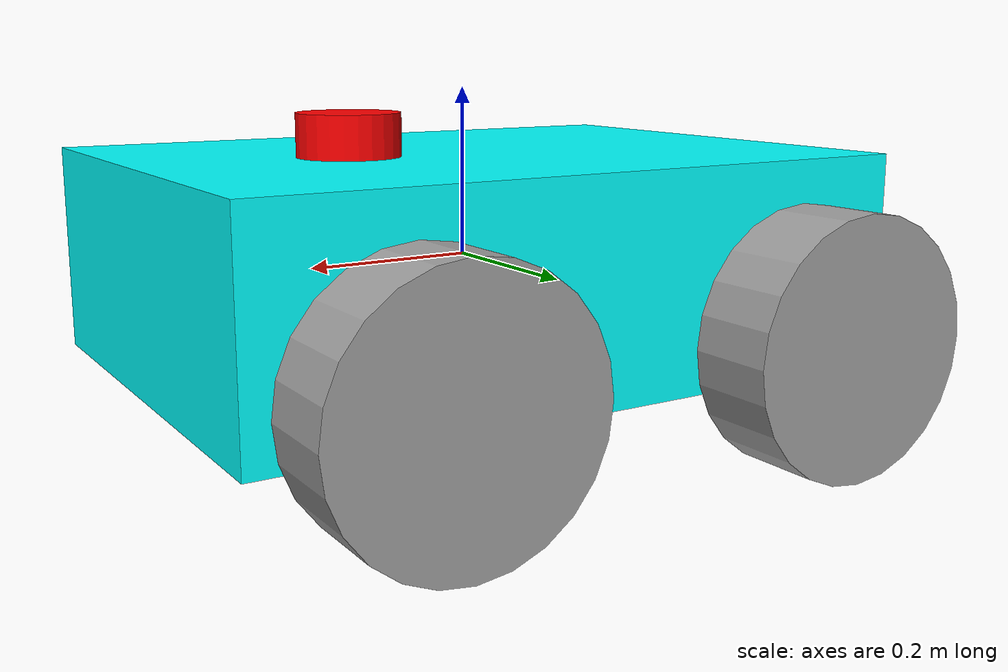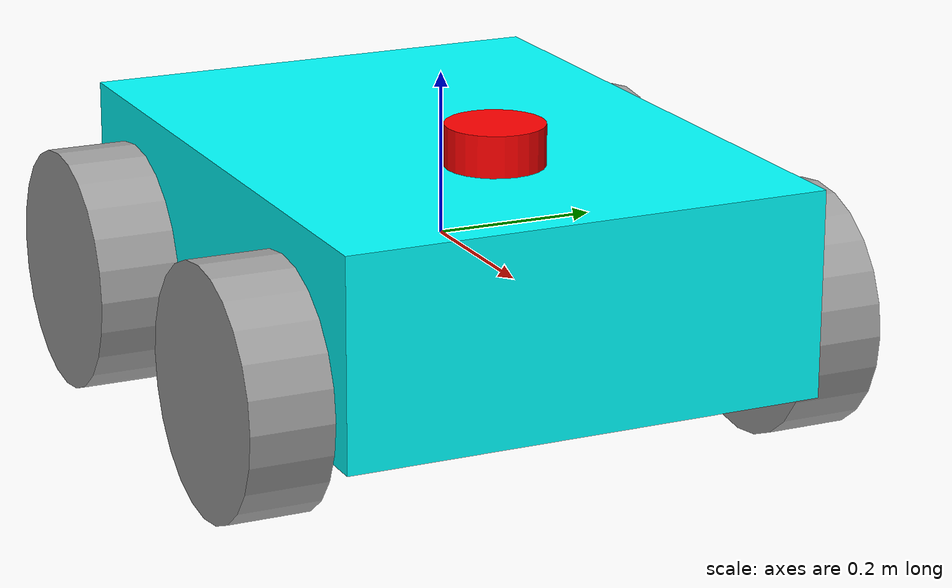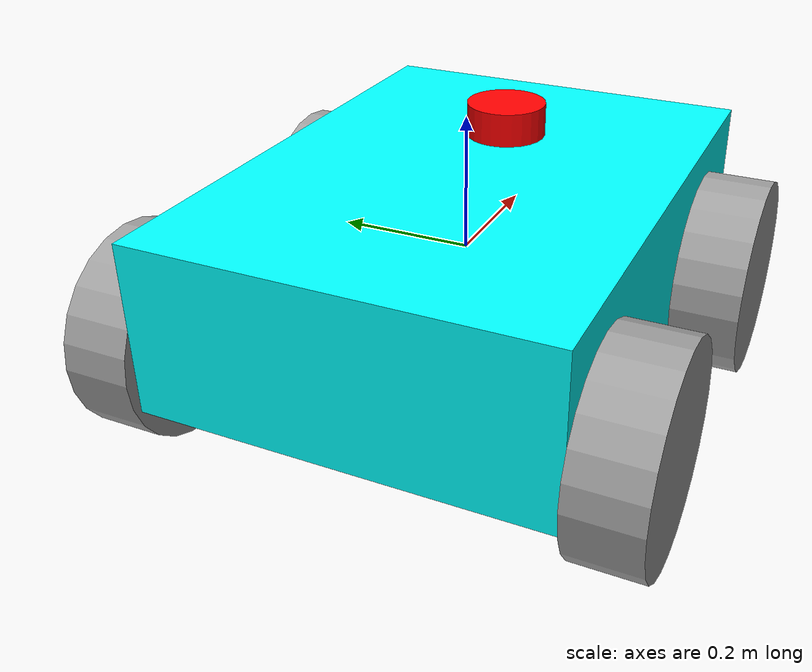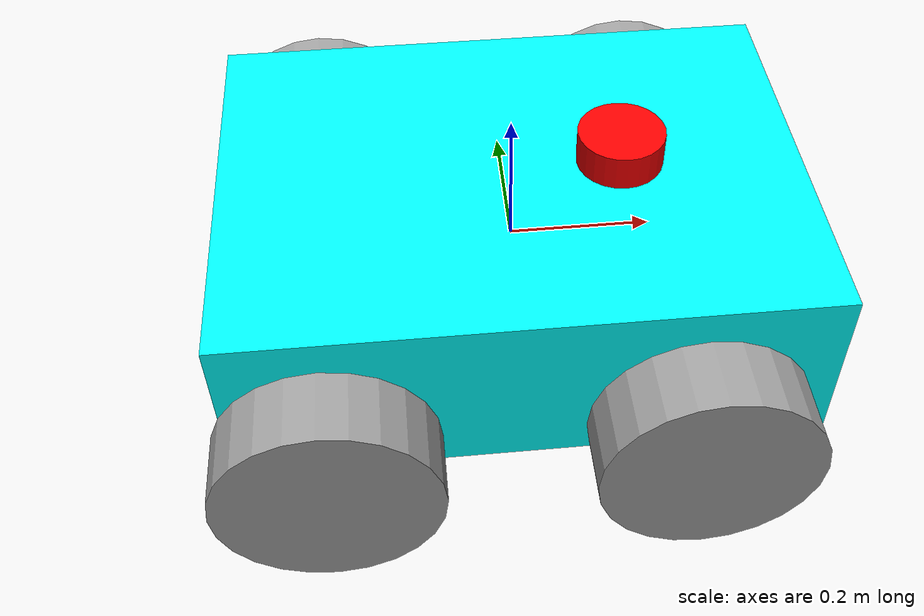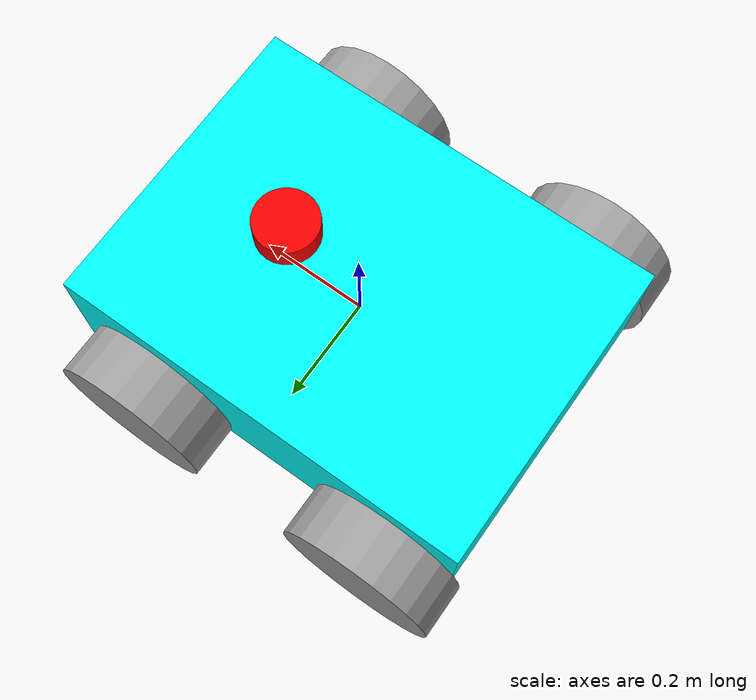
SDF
<sdf version='1.11'>
  <model name='RALLP_2'>
    <link name='base_link'>
      <inertial>
        <pose>0 0 0 0 0 0</pose>
        <mass>45</mass>
        <inertia>
          <ixx>1.53975</ixx>
          <ixy>0</ixy>
          <ixz>0</ixz>
          <iyy>2.6343749999999999</iyy>
          <iyz>0</iyz>
          <izz>3.7053750000000001</izz>
        </inertia>
      </inertial>
      <collision name='base_link_collision'>
        <pose>0 0 0 0 0 0</pose>
        <geometry>
          <box>
            <size>0.80000000000000004 0.58999999999999997 0.25</size>
          </box>
        </geometry>
      </collision>
      <collision name='base_link_fixed_joint_lump__lidar_link_collision_1'>
        <pose>0.14999999999999999 0 0.14999999999999999 0 0 0</pose>
        <geometry>
          <cylinder>
            <length>0.050000000000000003</length>
            <radius>0.059999999999999998</radius>
          </cylinder>
        </geometry>
      </collision>
      <visual name='base_link_visual'>
        <pose>0 0 0 0 0 0</pose>
        <geometry>
          <box>
            <size>0.80000000000000004 0.58999999999999997 0.25</size>
          </box>
        </geometry>
        <material>
          <diffuse>0 1 1 1</diffuse>
          <ambient>0 1 1 1</ambient>
        </material>
      </visual>
      <visual name='base_link_fixed_joint_lump__lidar_link_visual_1'>
        <pose>0.14999999999999999 0 0.14999999999999999 0 0 0</pose>
        <geometry>
          <cylinder>
            <length>0.050000000000000003</length>
            <radius>0.059999999999999998</radius>
          </cylinder>
        </geometry>
        <material>
          <diffuse>1 0 0 1</diffuse>
          <ambient>1 0 0 1</ambient>
        </material>
      </visual>
    </link>
    <joint name='fl_joint' type='revolute'>
      <pose relative_to='base_link'>0.2205 0.29499999999999998 -0.074147000000000005 0 0 0</pose>
      <parent>base_link</parent>
      <child>fl_link</child>
      <axis>
        <xyz>0 1 0</xyz>
        <limit>
          <lower>-inf</lower>
          <upper>inf</upper>
        </limit>
        <dynamics>
          <damping>0</damping>
          <friction>1000</friction>
          <spring_reference>0</spring_reference>
          <spring_stiffness>0</spring_stiffness>
        </dynamics>
      </axis>
    </joint>
    <link name='fl_link'>
      <pose relative_to='fl_joint'>0 0 0 0 0 0</pose>
      <inertial>
        <pose>0 0.050000000000000003 0 0 0 0</pose>
        <mass>1.5</mass>
        <inertia>
          <ixx>0.0096874999999999999</ixx>
          <ixy>0</ixy>
          <ixz>0</ixz>
          <iyy>0.016875000000000001</iyy>
          <iyz>0</iyz>
          <izz>0.0096874999999999999</izz>
        </inertia>
      </inertial>
      <collision name='fl_link_collision'>
        <pose>0 0.050000000000000003 0 1.5707963270000003 0 0</pose>
        <geometry>
          <cylinder>
            <length>0.10000000000000001</length>
            <radius>0.14999999999999999</radius>
          </cylinder>
        </geometry>
      </collision>
      <visual name='fl_link_visual'>
        <pose>0 0.050000000000000003 0 1.5707963270000003 0 0</pose>
        <geometry>
          <cylinder>
            <length>0.10000000000000001</length>
            <radius>0.14999999999999999</radius>
          </cylinder>
        </geometry>
        <material>
          <diffuse>0.625 0.625 0.625 1</diffuse>
          <ambient>0.625 0.625 0.625 1</ambient>
        </material>
      </visual>
    </link>
    <joint name='fr_joint' type='revolute'>
      <pose relative_to='base_link'>0.2205 -0.29499999999999998 -0.074147000000000005 0 0 0</pose>
      <parent>base_link</parent>
      <child>fr_link</child>
      <axis>
        <xyz>0 1 0</xyz>
        <limit>
          <lower>-inf</lower>
          <upper>inf</upper>
        </limit>
        <dynamics>
          <damping>0</damping>
          <friction>1000</friction>
          <spring_reference>0</spring_reference>
          <spring_stiffness>0</spring_stiffness>
        </dynamics>
      </axis>
    </joint>
    <link name='fr_link'>
      <pose relative_to='fr_joint'>0 0 0 0 0 0</pose>
      <inertial>
        <pose>0 -0.050000000000000003 0 0 0 0</pose>
        <mass>1.5</mass>
        <inertia>
          <ixx>0.0096874999999999999</ixx>
          <ixy>0</ixy>
          <ixz>0</ixz>
          <iyy>0.016875000000000001</iyy>
          <iyz>0</iyz>
          <izz>0.0096874999999999999</izz>
        </inertia>
      </inertial>
      <collision name='fr_link_collision'>
        <pose>0 -0.050000000000000003 0 -1.5707959999999999 0 0</pose>
        <geometry>
          <cylinder>
            <length>0.10000000000000001</length>
            <radius>0.14999999999999999</radius>
          </cylinder>
        </geometry>
      </collision>
      <visual name='fr_link_visual'>
        <pose>0 -0.050000000000000003 0 -1.5707959999999999 0 0</pose>
        <geometry>
          <cylinder>
            <length>0.10000000000000001</length>
            <radius>0.14999999999999999</radius>
          </cylinder>
        </geometry>
        <material>
          <diffuse>0.625 0.625 0.625 1</diffuse>
          <ambient>0.625 0.625 0.625 1</ambient>
        </material>
      </visual>
    </link>
    <joint name='rl_joint' type='revolute'>
      <pose relative_to='base_link'>-0.26950000000000002 0.29499999999999998 -0.074147000000000005 0 0 0</pose>
      <parent>base_link</parent>
      <child>drivewhl_rl_link</child>
      <axis>
        <xyz>0 1 0</xyz>
        <limit>
          <lower>-inf</lower>
          <upper>inf</upper>
        </limit>
        <dynamics>
          <damping>0</damping>
          <friction>1000</friction>
          <spring_reference>0</spring_reference>
          <spring_stiffness>0</spring_stiffness>
        </dynamics>
      </axis>
    </joint>
    <link name='drivewhl_rl_link'>
      <pose relative_to='rl_joint'>0 0 0 0 0 0</pose>
      <inertial>
        <pose>0 0.050000000000000003 0 0 0 0</pose>
        <mass>1.5</mass>
        <inertia>
          <ixx>0.0096874999999999999</ixx>
          <ixy>0</ixy>
          <ixz>0</ixz>
          <iyy>0.016875000000000001</iyy>
          <iyz>0</iyz>
          <izz>0.0096874999999999999</izz>
        </inertia>
      </inertial>
      <collision name='drivewhl_rl_link_collision'>
        <pose>0 0.050000000000000003 0 1.5707963270000003 0 0</pose>
        <geometry>
          <cylinder>
            <length>0.10000000000000001</length>
            <radius>0.14999999999999999</radius>
          </cylinder>
        </geometry>
      </collision>
      <visual name='drivewhl_rl_link_visual'>
        <pose>0 0.050000000000000003 0 1.5707963270000003 0 0</pose>
        <geometry>
          <cylinder>
            <length>0.10000000000000001</length>
            <radius>0.14999999999999999</radius>
          </cylinder>
        </geometry>
        <material>
          <diffuse>0.625 0.625 0.625 1</diffuse>
          <ambient>0.625 0.625 0.625 1</ambient>
        </material>
      </visual>
    </link>
    <joint name='rr_joint' type='revolute'>
      <pose relative_to='base_link'>-0.26950000000000002 -0.29499999999999998 -0.074147000000000005 -3.0621795865888462e-06 0 0</pose>
      <parent>base_link</parent>
      <child>rr_link</child>
      <axis>
        <xyz>0 1 0</xyz>
        <limit>
          <lower>-inf</lower>
          <upper>inf</upper>
        </limit>
        <dynamics>
          <damping>0</damping>
          <friction>1000</friction>
          <spring_reference>0</spring_reference>
          <spring_stiffness>0</spring_stiffness>
        </dynamics>
      </axis>
    </joint>
    <link name='rr_link'>
      <pose relative_to='rr_joint'>0 0 0 0 0 0</pose>
      <inertial>
        <pose>0 -0.050000000000000003 0 0 0 0</pose>
        <mass>1.5</mass>
        <inertia>
          <ixx>0.0096874999999999999</ixx>
          <ixy>0</ixy>
          <ixz>0</ixz>
          <iyy>0.016875000000000001</iyy>
          <iyz>0</iyz>
          <izz>0.0096874999999999999</izz>
        </inertia>
      </inertial>
      <collision name='rr_link_collision'>
        <pose>0 -0.050000000000000003 0 -1.5707963270000003 0 0</pose>
        <geometry>
          <cylinder>
            <length>0.10000000000000001</length>
            <radius>0.14999999999999999</radius>
          </cylinder>
        </geometry>
      </collision>
      <visual name='rr_link_visual'>
        <pose>0 -0.050000000000000003 0 -1.5707963270000003 0 0</pose>
        <geometry>
          <cylinder>
            <length>0.10000000000000001</length>
            <radius>0.14999999999999999</radius>
          </cylinder>
        </geometry>
        <material>
          <diffuse>0.625 0.625 0.625 1</diffuse>
          <ambient>0.625 0.625 0.625 1</ambient>
        </material>
      </visual>
    </link>
    <plugin name='gz::sim::systems::DiffDrive' filename='gz-sim-diff-drive-system'>
      <left_joint>fl_joint</left_joint>
      <left_joint>rl_joint</left_joint>
      <right_joint>fr_joint</right_joint>
      <right_joint>rr_joint</right_joint>
      <robotBaseFrame>base_link</robotBaseFrame>
      <wheel_separation>0.6</wheel_separation>
      <wheel_radius>0.15</wheel_radius>
      <odom_topic>odom</odom_topic>
      <frame_id>odom</frame_id>
      <child_frame_id>base_link</child_frame_id>
      <odom_publisher_frequency>100</odom_publisher_frequency>
      <tf_topic>/tf</tf_topic>
      <topic>cmd_vel</topic>
    </plugin>
    <plugin name='gz::sim::systems::TriggeredPublisher' filename='gz-sim-triggered-publisher-system'>
      <input type='gz.msgs.Int32' topic='/keyboard/keypress'>
        <match field='data'>87</match>
      </input>
      <output type='gz.msgs.Twist' topic='/cmd_vel'>linear: {x: 2}, angular: {z: 0.0}</output>
    </plugin>
    <plugin name='gz::sim::systems::TriggeredPublisher' filename='gz-sim-triggered-publisher-system'>
      <input type='gz.msgs.Int32' topic='/keyboard/keypress'>
        <match field='data'>83</match>
      </input>
      <output type='gz.msgs.Twist' topic='/cmd_vel'>linear: {x: -2}, angular: {z: 0.0}</output>
    </plugin>
    <plugin name='gz::sim::systems::TriggeredPublisher' filename='gz-sim-triggered-publisher-system'>
      <input type='gz.msgs.Int32' topic='/keyboard/keypress'>
        <match field='data'>65</match>
      </input>
      <output type='gz.msgs.Twist' topic='/cmd_vel'>linear: {x: 0.0}, angular: {z: 2}</output>
    </plugin>
    <plugin name='gz::sim::systems::TriggeredPublisher' filename='gz-sim-triggered-publisher-system'>
      <input type='gz.msgs.Int32' topic='/keyboard/keypress'>
        <match field='data'>68</match>
      </input>
      <output type='gz.msgs.Twist' topic='/cmd_vel'>linear: {x: 0.0}, angular: {z: -2}</output>
    </plugin>
    <plugin name='gz::sim::systems::TriggeredPublisher' filename='gz-sim-triggered-publisher-system'>
      <input type='gz.msgs.Int32' topic='/keyboard/keypress'>
        <match field='data'>70</match>
      </input>
      <output type='gz.msgs.Twist' topic='/cmd_vel'>linear: {x: 0.0}, angular: {z: 0.0}</output>
    </plugin>
    <plugin name='gz::sim::systems::JointStatePublisher' filename='gz-sim-joint-state-publisher-system'>
      <topic>joint_states</topic>
      <joint_name>fl_joint</joint_name>
      <joint_name>fr_joint</joint_name>
      <joint_name>rl_joint</joint_name>
      <joint_name>rr_joint</joint_name>
    </plugin>
    <plugin name='gz::sim::systems::Sensors' filename='gz-sim-sensors-system'>
      <render_engine>ogre2</render_engine>
    </plugin>
    <frame name='base_joint' attached_to='base_link'>
      <pose>0 0 -0.200853 0 0 0</pose>
    </frame>
    <frame name='base_footprint' attached_to='base_joint'>
      <pose>0 0 0 0 0 0</pose>
    </frame>
    <frame name='lidar_joint' attached_to='base_link'>
      <pose>0.14999999999999999 0 0.14999999999999999 0 0 0</pose>
    </frame>
    <frame name='lidar_link' attached_to='lidar_joint'>
      <pose>0 0 0 0 0 0</pose>
    </frame>
    <sensor name='gpu_lidar' type='gpu_lidar'>
      <pose relative_to='lidar_link'>0 0 0 0 0 0</pose>
      <topic>scan</topic>
      <update_rate>10</update_rate>
      <ray>
        <scan>
          <horizontal>
            <samples>640</samples>
            <resolution>1</resolution>
            <min_angle>-1.396263</min_angle>
            <max_angle>1.396263</max_angle>
          </horizontal>
          <vertical>
            <samples>1</samples>
            <resolution>0.01</resolution>
            <min_angle>0</min_angle>
            <max_angle>0</max_angle>
          </vertical>
        </scan>
        <range>
          <min>0.08</min>
          <max>10.0</max>
          <resolution>0.01</resolution>
        </range>
      </ray>
      <always_on>1</always_on>
      <visualize>true</visualize>
    </sensor>
  </model>
</sdf>
